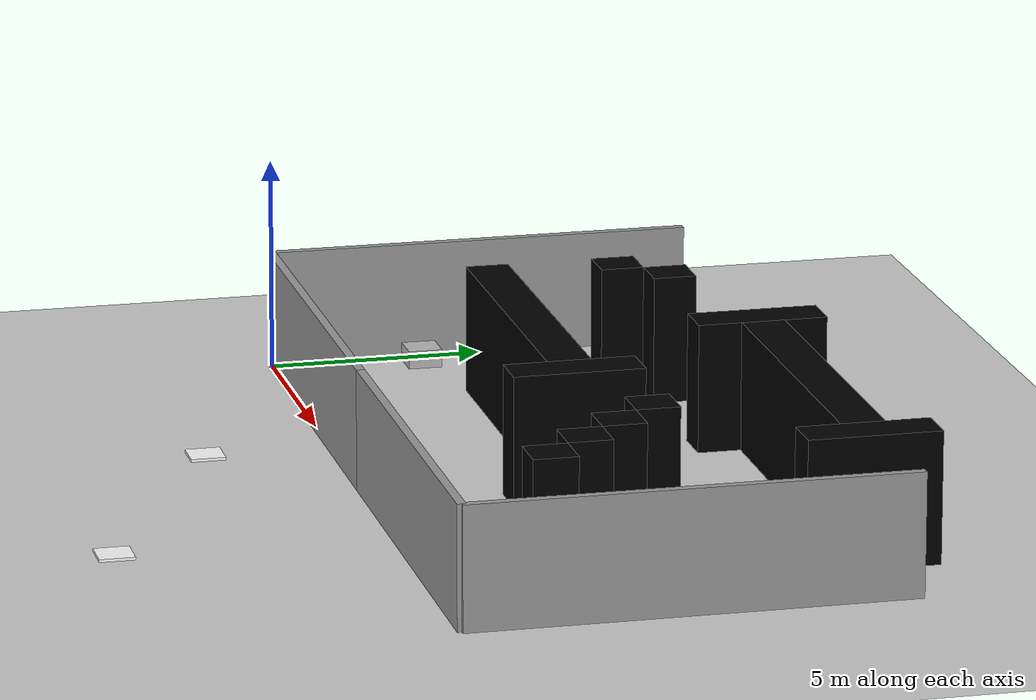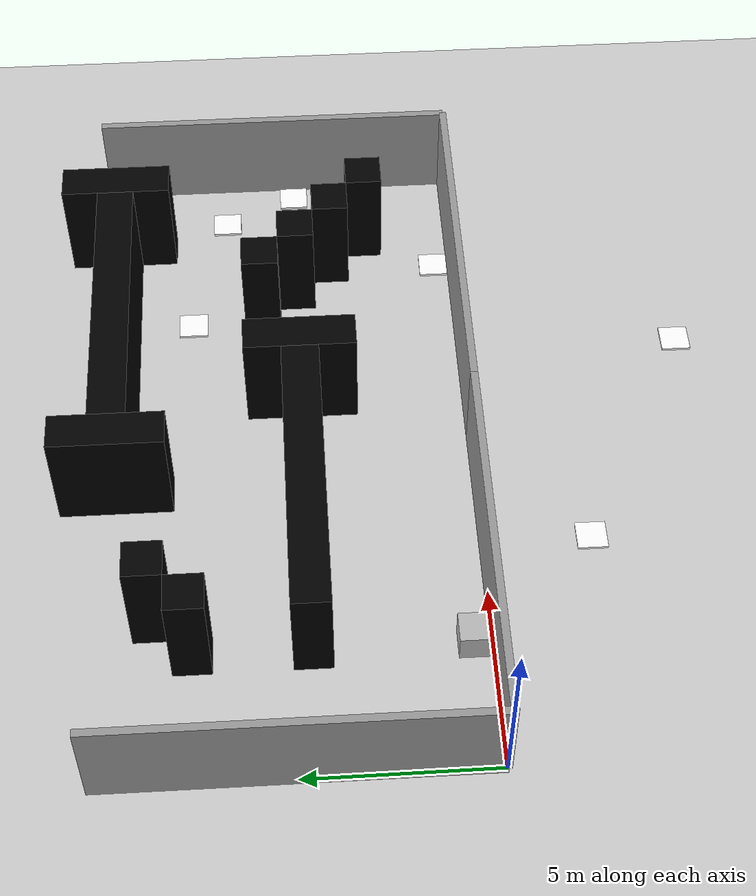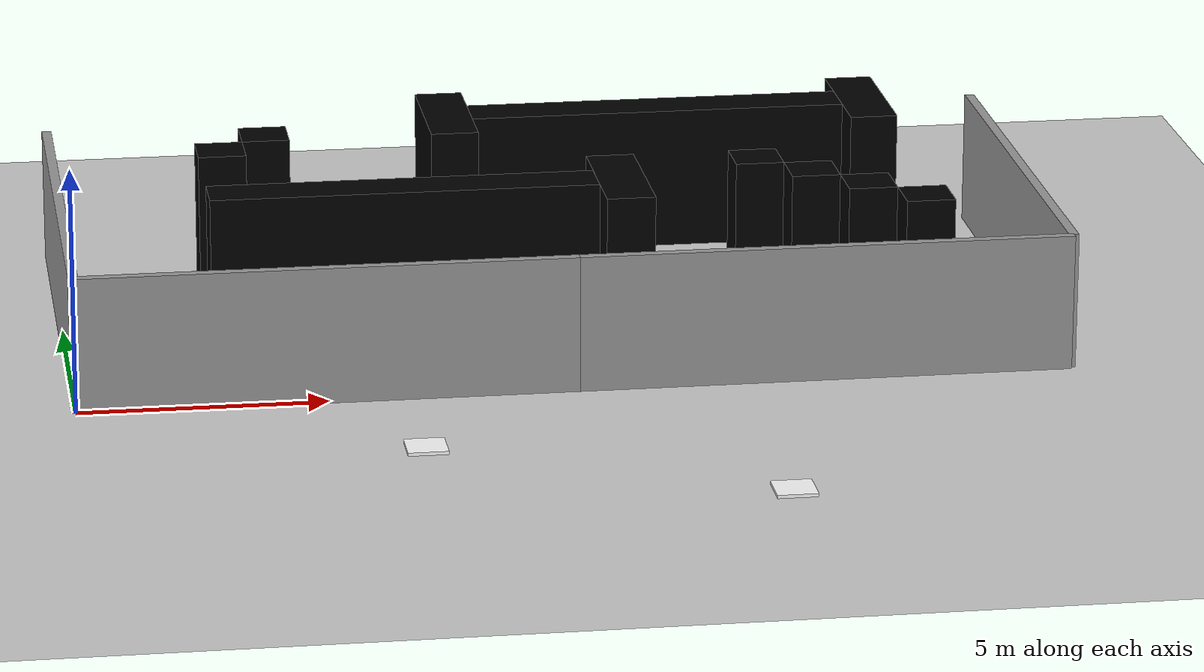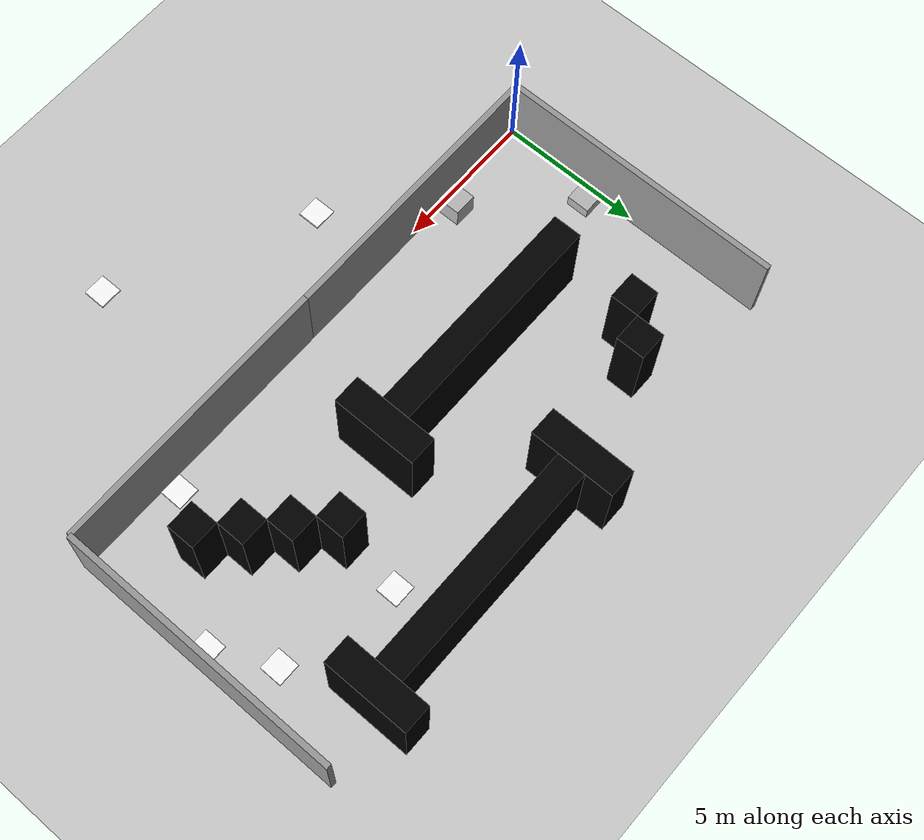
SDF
<sdf version="1.7">
 <world name="default">
  <model name="ground_plane">
   <static>1</static>
   <link name="link">
    <collision name="collision">
     <geometry><plane><normal>0 0 1</normal><size>100 100</size></plane></geometry>
     <surface><friction><ode><mu>100</mu><mu2>50</mu2></ode></friction></surface>
    </collision>
    <visual name="visual">
     <cast_shadows>0</cast_shadows>
     <geometry><plane><normal>0 0 1</normal><size>100 100</size></plane></geometry>
     <material>
      <script><uri>file://media/materials/scripts/gazebo.material</uri><name>Gazebo/Grey</name></script>
     </material>
    </visual>
   </link>
  </model>
  <model name="grey_wall_10">
   <link name="link">
    <pose>0 0 1.4 0 -0 0</pose>
    <inertial>
     <mass>1</mass>
     <inertia><ixx>1</ixx><ixy>0</ixy><ixz>0</ixz><iyy>1</iyy><iyz>0</iyz><izz>1</izz></inertia>
    </inertial>
    <visual name="visual">
     <cast_shadows>0</cast_shadows>
     <geometry><box><size>10 0.2 2.8</size></box></geometry>
     <material>
      <script>
       <uri>model://grey_wall/materials/scripts</uri>
       <uri>model://grey_wall/materials/textures</uri>
       <name>vrc/grey_wall</name>
      </script>
      <shader type="vertex"><normal_map>__default__</normal_map></shader>
      <ambient>1 1 1 1</ambient>
      <diffuse>1 1 1 1</diffuse>
      <specular>0 0 0 1</specular>
      <emissive>0 0 0 1</emissive>
     </material>
    </visual>
    <collision name="collision">
     <geometry><box><size>10 0.2 2.8</size></box></geometry>
     <surface>
      <friction>
       <ode><mu>1</mu><mu2>1</mu2><fdir1>0 0 0</fdir1><slip1>0</slip1><slip2>0</slip2></ode>
       <torsional>
        <coefficient>1</coefficient>
        <patch_radius>0</patch_radius>
        <surface_radius>0</surface_radius>
        <use_patch_radius>1</use_patch_radius>
        <ode><slip>0</slip></ode>
       </torsional>
      </friction>
      <bounce><restitution_coefficient>0</restitution_coefficient><threshold>1e+06</threshold></bounce>
      <contact>
       <collide_without_contact>0</collide_without_contact>
       <collide_without_contact_bitmask>1</collide_without_contact_bitmask>
       <collide_bitmask>1</collide_bitmask>
       <ode>
        <soft_cfm>0</soft_cfm>
        <soft_erp>0.2</soft_erp>
        <kp>1e+13</kp>
        <kd>1</kd>
        <max_vel>0.01</max_vel>
        <min_depth>0</min_depth>
       </ode>
       <bullet>
        <split_impulse>1</split_impulse>
        <split_impulse_penetration_threshold>-0.01</split_impulse_penetration_threshold>
        <soft_cfm>0</soft_cfm>
        <soft_erp>0.2</soft_erp>
        <kp>1e+13</kp>
        <kd>1</kd>
       </bullet>
      </contact>
     </surface>
    </collision>
   </link>
   <static>1</static>
   <pose>5 0 0 0 -0 0</pose>
  </model>
  <model name="grey_wall_10_1">
   <link name="link">
    <pose>0 0 1.4 0 -0 0</pose>
    <inertial>
     <mass>1</mass>
     <inertia><ixx>1</ixx><ixy>0</ixy><ixz>0</ixz><iyy>1</iyy><iyz>0</iyz><izz>1</izz></inertia>
    </inertial>
    <visual name="visual">
     <cast_shadows>0</cast_shadows>
     <geometry><box><size>10 0.2 2.8</size></box></geometry>
     <material>
      <script>
       <uri>model://grey_wall/materials/scripts</uri>
       <uri>model://grey_wall/materials/textures</uri>
       <name>vrc/grey_wall</name>
      </script>
      <shader type="vertex"><normal_map>__default__</normal_map></shader>
      <ambient>1 1 1 1</ambient>
      <diffuse>1 1 1 1</diffuse>
      <specular>0 0 0 1</specular>
      <emissive>0 0 0 1</emissive>
     </material>
    </visual>
    <collision name="collision">
     <geometry><box><size>10 0.2 2.8</size></box></geometry>
     <surface>
      <friction>
       <ode><mu>1</mu><mu2>1</mu2><fdir1>0 0 0</fdir1><slip1>0</slip1><slip2>0</slip2></ode>
       <torsional>
        <coefficient>1</coefficient>
        <patch_radius>0</patch_radius>
        <surface_radius>0</surface_radius>
        <use_patch_radius>1</use_patch_radius>
        <ode><slip>0</slip></ode>
       </torsional>
      </friction>
      <bounce><restitution_coefficient>0</restitution_coefficient><threshold>1e+06</threshold></bounce>
      <contact>
       <collide_without_contact>0</collide_without_contact>
       <collide_without_contact_bitmask>1</collide_without_contact_bitmask>
       <collide_bitmask>1</collide_bitmask>
       <ode>
        <soft_cfm>0</soft_cfm>
        <soft_erp>0.2</soft_erp>
        <kp>1e+13</kp>
        <kd>1</kd>
        <max_vel>0.01</max_vel>
        <min_depth>0</min_depth>
       </ode>
       <bullet>
        <split_impulse>1</split_impulse>
        <split_impulse_penetration_threshold>-0.01</split_impulse_penetration_threshold>
        <soft_cfm>0</soft_cfm>
        <soft_erp>0.2</soft_erp>
        <kp>1e+13</kp>
        <kd>1</kd>
       </bullet>
      </contact>
     </surface>
    </collision>
   </link>
   <static>1</static>
   <pose>15 0 0 0 -0 0</pose>
  </model>
  <model name="grey_wall_10_2">
   <link name="link">
    <pose>0 0 1.4 0 -0 0</pose>
    <inertial>
     <mass>1</mass>
     <inertia><ixx>1</ixx><ixy>0</ixy><ixz>0</ixz><iyy>1</iyy><iyz>0</iyz><izz>1</izz></inertia>
    </inertial>
    <visual name="visual">
     <cast_shadows>0</cast_shadows>
     <geometry><box><size>10 0.2 2.8</size></box></geometry>
     <material>
      <script>
       <uri>model://grey_wall/materials/scripts</uri>
       <uri>model://grey_wall/materials/textures</uri>
       <name>vrc/grey_wall</name>
      </script>
      <shader type="vertex"><normal_map>__default__</normal_map></shader>
      <ambient>1 1 1 1</ambient>
      <diffuse>1 1 1 1</diffuse>
      <specular>0 0 0 1</specular>
      <emissive>0 0 0 1</emissive>
     </material>
    </visual>
    <collision name="collision">
     <geometry><box><size>10 0.2 2.8</size></box></geometry>
     <surface>
      <friction>
       <ode><mu>1</mu><mu2>1</mu2><fdir1>0 0 0</fdir1><slip1>0</slip1><slip2>0</slip2></ode>
       <torsional>
        <coefficient>1</coefficient>
        <patch_radius>0</patch_radius>
        <surface_radius>0</surface_radius>
        <use_patch_radius>1</use_patch_radius>
        <ode><slip>0</slip></ode>
       </torsional>
      </friction>
      <bounce><restitution_coefficient>0</restitution_coefficient><threshold>1e+06</threshold></bounce>
      <contact>
       <collide_without_contact>0</collide_without_contact>
       <collide_without_contact_bitmask>1</collide_without_contact_bitmask>
       <collide_bitmask>1</collide_bitmask>
       <ode>
        <soft_cfm>0</soft_cfm>
        <soft_erp>0.2</soft_erp>
        <kp>1e+13</kp>
        <kd>1</kd>
        <max_vel>0.01</max_vel>
        <min_depth>0</min_depth>
       </ode>
       <bullet>
        <split_impulse>1</split_impulse>
        <split_impulse_penetration_threshold>-0.01</split_impulse_penetration_threshold>
        <soft_cfm>0</soft_cfm>
        <soft_erp>0.2</soft_erp>
        <kp>1e+13</kp>
        <kd>1</kd>
       </bullet>
      </contact>
     </surface>
    </collision>
   </link>
   <static>1</static>
   <pose>0 5 0 0 -0 1.57</pose>
  </model>
  <model name="grey_wall_10_3">
   <link name="link">
    <pose>0 0 1.4 0 -0 0</pose>
    <inertial>
     <mass>1</mass>
     <inertia><ixx>1</ixx><ixy>0</ixy><ixz>0</ixz><iyy>1</iyy><iyz>0</iyz><izz>1</izz></inertia>
    </inertial>
    <visual name="visual">
     <cast_shadows>0</cast_shadows>
     <geometry><box><size>10 0.2 2.8</size></box></geometry>
     <material>
      <script>
       <uri>model://grey_wall/materials/scripts</uri>
       <uri>model://grey_wall/materials/textures</uri>
       <name>vrc/grey_wall</name>
      </script>
      <shader type="vertex"><normal_map>__default__</normal_map></shader>
      <ambient>1 1 1 1</ambient>
      <diffuse>1 1 1 1</diffuse>
      <specular>0 0 0 1</specular>
      <emissive>0 0 0 1</emissive>
     </material>
    </visual>
    <collision name="collision">
     <geometry><box><size>10 0.2 2.8</size></box></geometry>
     <surface>
      <friction>
       <ode><mu>1</mu><mu2>1</mu2><fdir1>0 0 0</fdir1><slip1>0</slip1><slip2>0</slip2></ode>
       <torsional>
        <coefficient>1</coefficient>
        <patch_radius>0</patch_radius>
        <surface_radius>0</surface_radius>
        <use_patch_radius>1</use_patch_radius>
        <ode><slip>0</slip></ode>
       </torsional>
      </friction>
      <bounce><restitution_coefficient>0</restitution_coefficient><threshold>1e+06</threshold></bounce>
      <contact>
       <collide_without_contact>0</collide_without_contact>
       <collide_without_contact_bitmask>1</collide_without_contact_bitmask>
       <collide_bitmask>1</collide_bitmask>
       <ode>
        <soft_cfm>0</soft_cfm>
        <soft_erp>0.2</soft_erp>
        <kp>1e+13</kp>
        <kd>1</kd>
        <max_vel>0.01</max_vel>
        <min_depth>0</min_depth>
       </ode>
       <bullet>
        <split_impulse>1</split_impulse>
        <split_impulse_penetration_threshold>-0.01</split_impulse_penetration_threshold>
        <soft_cfm>0</soft_cfm>
        <soft_erp>0.2</soft_erp>
        <kp>1e+13</kp>
        <kd>1</kd>
       </bullet>
      </contact>
     </surface>
    </collision>
   </link>
   <static>1</static>
   <pose>20 5 0 0 -0 1.57</pose>
  </model>
  <model name="brick_box_8x1_b">
   <link name="chassis">
    <pose>0 0 1.5 0 -0 0</pose>
    <inertial>
     <mass>1</mass>
     <inertia><ixx>1</ixx><ixy>0</ixy><ixz>0</ixz><iyy>1</iyy><iyz>0</iyz><izz>1</izz></inertia>
    </inertial>
    <visual name="visual">
     <geometry><mesh><uri>model://brick_box_3x1x3/meshes/simple_box.dae</uri><scale>8 1 3</scale></mesh></geometry>
     <material>
      <script>
       <uri>model://brick_box_3x1x3/materials/scripts</uri>
       <uri>model://brick_box_3x1x3/materials/textures</uri>
       <name>BrickBox/Diffuse</name>
      </script>
      <shader type="vertex"><normal_map>__default__</normal_map></shader>
      <ambient>0 0 0 1</ambient>
      <diffuse>0 0 0 1</diffuse>
      <specular>0 0 0 1</specular>
      <emissive>0 0 0 1</emissive>
      <lighting>1</lighting>
     </material>
    </visual>
    <collision name="collision">
     <geometry><box><size>8 1 3</size></box></geometry>
     <surface>
      <friction>
       <ode><mu>1</mu><mu2>1</mu2><fdir1>0 0 0</fdir1><slip1>0</slip1><slip2>0</slip2></ode>
       <torsional>
        <coefficient>1</coefficient>
        <patch_radius>0</patch_radius>
        <surface_radius>0</surface_radius>
        <use_patch_radius>1</use_patch_radius>
        <ode><slip>0</slip></ode>
       </torsional>
      </friction>
      <bounce><restitution_coefficient>0</restitution_coefficient><threshold>1e+06</threshold></bounce>
      <contact>
       <collide_without_contact>0</collide_without_contact>
       <collide_without_contact_bitmask>1</collide_without_contact_bitmask>
       <collide_bitmask>1</collide_bitmask>
       <ode>
        <soft_cfm>0</soft_cfm>
        <soft_erp>0.2</soft_erp>
        <kp>1e+13</kp>
        <kd>1</kd>
        <max_vel>0.01</max_vel>
        <min_depth>0</min_depth>
       </ode>
       <bullet>
        <split_impulse>1</split_impulse>
        <split_impulse_penetration_threshold>-0.01</split_impulse_penetration_threshold>
        <soft_cfm>0</soft_cfm>
        <soft_erp>0.2</soft_erp>
        <kp>1e+13</kp>
        <kd>1</kd>
       </bullet>
      </contact>
     </surface>
    </collision>
   </link>
   <static>1</static>
   <pose>7 4.5 0 0 -0 0</pose>
  </model>
  <model name="brick_box_8x1_b_0">
   <link name="chassis">
    <pose>0 0 1.5 0 -0 0</pose>
    <inertial>
     <mass>1</mass>
     <inertia><ixx>1</ixx><ixy>0</ixy><ixz>0</ixz><iyy>1</iyy><iyz>0</iyz><izz>1</izz></inertia>
    </inertial>
    <visual name="visual">
     <geometry><mesh><uri>model://brick_box_3x1x3/meshes/simple_box.dae</uri><scale>8 1 3</scale></mesh></geometry>
     <material>
      <script>
       <uri>model://brick_box_3x1x3/materials/scripts</uri>
       <uri>model://brick_box_3x1x3/materials/textures</uri>
       <name>BrickBox/Diffuse</name>
      </script>
      <shader type="vertex"><normal_map>__default__</normal_map></shader>
      <ambient>0 0 0 1</ambient>
      <diffuse>0 0 0 1</diffuse>
      <specular>0 0 0 1</specular>
      <emissive>0 0 0 1</emissive>
      <lighting>1</lighting>
     </material>
    </visual>
    <collision name="collision">
     <geometry><box><size>8 1 3</size></box></geometry>
     <surface>
      <friction>
       <ode><mu>1</mu><mu2>1</mu2><fdir1>0 0 0</fdir1><slip1>0</slip1><slip2>0</slip2></ode>
       <torsional>
        <coefficient>1</coefficient>
        <patch_radius>0</patch_radius>
        <surface_radius>0</surface_radius>
        <use_patch_radius>1</use_patch_radius>
        <ode><slip>0</slip></ode>
       </torsional>
      </friction>
      <bounce><restitution_coefficient>0</restitution_coefficient><threshold>1e+06</threshold></bounce>
      <contact>
       <collide_without_contact>0</collide_without_contact>
       <collide_without_contact_bitmask>1</collide_without_contact_bitmask>
       <collide_bitmask>1</collide_bitmask>
       <ode>
        <soft_cfm>0</soft_cfm>
        <soft_erp>0.2</soft_erp>
        <kp>1e+13</kp>
        <kd>1</kd>
        <max_vel>0.01</max_vel>
        <min_depth>0</min_depth>
       </ode>
       <bullet>
        <split_impulse>1</split_impulse>
        <split_impulse_penetration_threshold>-0.01</split_impulse_penetration_threshold>
        <soft_cfm>0</soft_cfm>
        <soft_erp>0.2</soft_erp>
        <kp>1e+13</kp>
        <kd>1</kd>
       </bullet>
      </contact>
     </surface>
    </collision>
   </link>
   <static>1</static>
   <pose>13 9.5 0 0 -0 0</pose>
  </model>
  <model name="brick_box_3x1x3_black_1">
   <link name="chassis">
    <pose>0 0 1.5 0 -0 0</pose>
    <inertial>
     <mass>1</mass>
     <inertia><ixx>1</ixx><ixy>0</ixy><ixz>0</ixz><iyy>1</iyy><iyz>0</iyz><izz>1</izz></inertia>
    </inertial>
    <visual name="visual">
     <geometry><mesh><uri>model://brick_box_3x1x3/meshes/simple_box.dae</uri><scale>3 1 3</scale></mesh></geometry>
     <material>
      <script>
       <uri>model://brick_box_3x1x3/materials/scripts</uri>
       <uri>model://brick_box_3x1x3/materials/textures</uri>
       <name>BrickBox/Diffuse</name>
      </script>
      <shader type="vertex"><normal_map>__default__</normal_map></shader>
      <ambient>0 0 0 1</ambient>
      <diffuse>0 0 0 1</diffuse>
      <specular>0 0 0 1</specular>
      <emissive>0 0 0 1</emissive>
      <lighting>1</lighting>
     </material>
    </visual>
    <collision name="collision">
     <geometry><box><size>3 1 3</size></box></geometry>
     <surface>
      <friction>
       <ode><mu>1</mu><mu2>1</mu2><fdir1>0 0 0</fdir1><slip1>0</slip1><slip2>0</slip2></ode>
       <torsional>
        <coefficient>1</coefficient>
        <patch_radius>0</patch_radius>
        <surface_radius>0</surface_radius>
        <use_patch_radius>1</use_patch_radius>
        <ode><slip>0</slip></ode>
       </torsional>
      </friction>
      <bounce><restitution_coefficient>0</restitution_coefficient><threshold>1e+06</threshold></bounce>
      <contact>
       <collide_without_contact>0</collide_without_contact>
       <collide_without_contact_bitmask>1</collide_without_contact_bitmask>
       <collide_bitmask>1</collide_bitmask>
       <ode>
        <soft_cfm>0</soft_cfm>
        <soft_erp>0.2</soft_erp>
        <kp>1e+13</kp>
        <kd>1</kd>
        <max_vel>0.01</max_vel>
        <min_depth>0</min_depth>
       </ode>
       <bullet>
        <split_impulse>1</split_impulse>
        <split_impulse_penetration_threshold>-0.01</split_impulse_penetration_threshold>
        <soft_cfm>0</soft_cfm>
        <soft_erp>0.2</soft_erp>
        <kp>1e+13</kp>
        <kd>1</kd>
       </bullet>
      </contact>
     </surface>
    </collision>
   </link>
   <static>1</static>
   <pose>17.5 9.5 0 0 -0 1.57</pose>
  </model>
  <model name="brick_box_3x1x3_black_2">
   <link name="chassis">
    <pose>0 0 1.5 0 -0 0</pose>
    <inertial>
     <mass>1</mass>
     <inertia><ixx>1</ixx><ixy>0</ixy><ixz>0</ixz><iyy>1</iyy><iyz>0</iyz><izz>1</izz></inertia>
    </inertial>
    <visual name="visual">
     <geometry><mesh><uri>model://brick_box_3x1x3/meshes/simple_box.dae</uri><scale>3 1 3</scale></mesh></geometry>
     <material>
      <script>
       <uri>model://brick_box_3x1x3/materials/scripts</uri>
       <uri>model://brick_box_3x1x3/materials/textures</uri>
       <name>BrickBox/Diffuse</name>
      </script>
      <shader type="vertex"><normal_map>__default__</normal_map></shader>
      <ambient>0 0 0 1</ambient>
      <diffuse>0 0 0 1</diffuse>
      <specular>0 0 0 1</specular>
      <emissive>0 0 0 1</emissive>
      <lighting>1</lighting>
     </material>
    </visual>
    <collision name="collision">
     <geometry><box><size>3 1 3</size></box></geometry>
     <surface>
      <friction>
       <ode><mu>1</mu><mu2>1</mu2><fdir1>0 0 0</fdir1><slip1>0</slip1><slip2>0</slip2></ode>
       <torsional>
        <coefficient>1</coefficient>
        <patch_radius>0</patch_radius>
        <surface_radius>0</surface_radius>
        <use_patch_radius>1</use_patch_radius>
        <ode><slip>0</slip></ode>
       </torsional>
      </friction>
      <bounce><restitution_coefficient>0</restitution_coefficient><threshold>1e+06</threshold></bounce>
      <contact>
       <collide_without_contact>0</collide_without_contact>
       <collide_without_contact_bitmask>1</collide_without_contact_bitmask>
       <collide_bitmask>1</collide_bitmask>
       <ode>
        <soft_cfm>0</soft_cfm>
        <soft_erp>0.2</soft_erp>
        <kp>1e+13</kp>
        <kd>1</kd>
        <max_vel>0.01</max_vel>
        <min_depth>0</min_depth>
       </ode>
       <bullet>
        <split_impulse>1</split_impulse>
        <split_impulse_penetration_threshold>-0.01</split_impulse_penetration_threshold>
        <soft_cfm>0</soft_cfm>
        <soft_erp>0.2</soft_erp>
        <kp>1e+13</kp>
        <kd>1</kd>
       </bullet>
      </contact>
     </surface>
    </collision>
   </link>
   <static>1</static>
   <pose>8.5 9.5 0 0 -0 1.57</pose>
  </model>
  <model name="brick_box_3x1x3_black_3">
   <link name="chassis">
    <pose>0 0 1.5 0 -0 0</pose>
    <inertial>
     <mass>1</mass>
     <inertia><ixx>1</ixx><ixy>0</ixy><ixz>0</ixz><iyy>1</iyy><iyz>0</iyz><izz>1</izz></inertia>
    </inertial>
    <visual name="visual">
     <geometry><mesh><uri>model://brick_box_3x1x3/meshes/simple_box.dae</uri><scale>3 1 3</scale></mesh></geometry>
     <material>
      <script>
       <uri>model://brick_box_3x1x3/materials/scripts</uri>
       <uri>model://brick_box_3x1x3/materials/textures</uri>
       <name>BrickBox/Diffuse</name>
      </script>
      <shader type="vertex"><normal_map>__default__</normal_map></shader>
      <ambient>0 0 0 1</ambient>
      <diffuse>0 0 0 1</diffuse>
      <specular>0 0 0 1</specular>
      <emissive>0 0 0 1</emissive>
      <lighting>1</lighting>
     </material>
    </visual>
    <collision name="collision">
     <geometry><box><size>3 1 3</size></box></geometry>
     <surface>
      <friction>
       <ode><mu>1</mu><mu2>1</mu2><fdir1>0 0 0</fdir1><slip1>0</slip1><slip2>0</slip2></ode>
       <torsional>
        <coefficient>1</coefficient>
        <patch_radius>0</patch_radius>
        <surface_radius>0</surface_radius>
        <use_patch_radius>1</use_patch_radius>
        <ode><slip>0</slip></ode>
       </torsional>
      </friction>
      <bounce><restitution_coefficient>0</restitution_coefficient><threshold>1e+06</threshold></bounce>
      <contact>
       <collide_without_contact>0</collide_without_contact>
       <collide_without_contact_bitmask>1</collide_without_contact_bitmask>
       <collide_bitmask>1</collide_bitmask>
       <ode>
        <soft_cfm>0</soft_cfm>
        <soft_erp>0.2</soft_erp>
        <kp>1e+13</kp>
        <kd>1</kd>
        <max_vel>0.01</max_vel>
        <min_depth>0</min_depth>
       </ode>
       <bullet>
        <split_impulse>1</split_impulse>
        <split_impulse_penetration_threshold>-0.01</split_impulse_penetration_threshold>
        <soft_cfm>0</soft_cfm>
        <soft_erp>0.2</soft_erp>
        <kp>1e+13</kp>
        <kd>1</kd>
       </bullet>
      </contact>
     </surface>
    </collision>
   </link>
   <static>1</static>
   <pose>11.5 4.5 0 0 -0 1.57</pose>
  </model>
  <model name="brick_box_1_B_0">
   <link name="chassis">
    <pose>0 0 1.5 0 -0 0</pose>
    <inertial>
     <mass>1</mass>
     <inertia><ixx>1</ixx><ixy>0</ixy><ixz>0</ixz><iyy>1</iyy><iyz>0</iyz><izz>1</izz></inertia>
    </inertial>
    <visual name="visual">
     <geometry><mesh><uri>model://brick_box_3x1x3/meshes/simple_box.dae</uri><scale>1 1 3</scale></mesh></geometry>
     <material>
      <script>
       <uri>model://brick_box_3x1x3/materials/scripts</uri>
       <uri>model://brick_box_3x1x3/materials/textures</uri>
       <name>BrickBox/Diffuse</name>
      </script>
      <shader type="vertex"><normal_map>__default__</normal_map></shader>
      <ambient>0 0 0 1</ambient>
      <diffuse>0 0 0 1</diffuse>
      <specular>0 0 0 1</specular>
      <emissive>0 0 0 1</emissive>
      <lighting>1</lighting>
     </material>
    </visual>
    <collision name="collision">
     <geometry><box><size>1 1 3</size></box></geometry>
     <surface>
      <friction>
       <ode><mu>1</mu><mu2>1</mu2><fdir1>0 0 0</fdir1><slip1>0</slip1><slip2>0</slip2></ode>
       <torsional>
        <coefficient>1</coefficient>
        <patch_radius>0</patch_radius>
        <surface_radius>0</surface_radius>
        <use_patch_radius>1</use_patch_radius>
        <ode><slip>0</slip></ode>
       </torsional>
      </friction>
      <bounce><restitution_coefficient>0</restitution_coefficient><threshold>1e+06</threshold></bounce>
      <contact>
       <collide_without_contact>0</collide_without_contact>
       <collide_without_contact_bitmask>1</collide_without_contact_bitmask>
       <collide_bitmask>1</collide_bitmask>
       <ode>
        <soft_cfm>0</soft_cfm>
        <soft_erp>0.2</soft_erp>
        <kp>1e+13</kp>
        <kd>1</kd>
        <max_vel>0.01</max_vel>
        <min_depth>0</min_depth>
       </ode>
       <bullet>
        <split_impulse>1</split_impulse>
        <split_impulse_penetration_threshold>-0.01</split_impulse_penetration_threshold>
        <soft_cfm>0</soft_cfm>
        <soft_erp>0.2</soft_erp>
        <kp>1e+13</kp>
        <kd>1</kd>
       </bullet>
      </contact>
     </surface>
    </collision>
   </link>
   <static>1</static>
   <pose>17.5 2.5 0 0 -0 0</pose>
  </model>
  <model name="brick_box_1_B_2">
   <link name="chassis">
    <pose>0 0 1.5 0 -0 0</pose>
    <inertial>
     <mass>1</mass>
     <inertia><ixx>1</ixx><ixy>0</ixy><ixz>0</ixz><iyy>1</iyy><iyz>0</iyz><izz>1</izz></inertia>
    </inertial>
    <visual name="visual">
     <geometry><mesh><uri>model://brick_box_3x1x3/meshes/simple_box.dae</uri><scale>1 1 3</scale></mesh></geometry>
     <material>
      <script>
       <uri>model://brick_box_3x1x3/materials/scripts</uri>
       <uri>model://brick_box_3x1x3/materials/textures</uri>
       <name>BrickBox/Diffuse</name>
      </script>
      <shader type="vertex"><normal_map>__default__</normal_map></shader>
      <ambient>0 0 0 1</ambient>
      <diffuse>0 0 0 1</diffuse>
      <specular>0 0 0 1</specular>
      <emissive>0 0 0 1</emissive>
      <lighting>1</lighting>
     </material>
    </visual>
    <collision name="collision">
     <geometry><box><size>1 1 3</size></box></geometry>
     <surface>
      <friction>
       <ode><mu>1</mu><mu2>1</mu2><fdir1>0 0 0</fdir1><slip1>0</slip1><slip2>0</slip2></ode>
       <torsional>
        <coefficient>1</coefficient>
        <patch_radius>0</patch_radius>
        <surface_radius>0</surface_radius>
        <use_patch_radius>1</use_patch_radius>
        <ode><slip>0</slip></ode>
       </torsional>
      </friction>
      <bounce><restitution_coefficient>0</restitution_coefficient><threshold>1e+06</threshold></bounce>
      <contact>
       <collide_without_contact>0</collide_without_contact>
       <collide_without_contact_bitmask>1</collide_without_contact_bitmask>
       <collide_bitmask>1</collide_bitmask>
       <ode>
        <soft_cfm>0</soft_cfm>
        <soft_erp>0.2</soft_erp>
        <kp>1e+13</kp>
        <kd>1</kd>
        <max_vel>0.01</max_vel>
        <min_depth>0</min_depth>
       </ode>
       <bullet>
        <split_impulse>1</split_impulse>
        <split_impulse_penetration_threshold>-0.01</split_impulse_penetration_threshold>
        <soft_cfm>0</soft_cfm>
        <soft_erp>0.2</soft_erp>
        <kp>1e+13</kp>
        <kd>1</kd>
       </bullet>
      </contact>
     </surface>
    </collision>
   </link>
   <static>1</static>
   <pose>16.5 3.5 0 0 -0 0</pose>
  </model>
  <model name="brick_box_1_B_4">
   <link name="chassis">
    <pose>0 0 1.5 0 -0 0</pose>
    <inertial>
     <mass>1</mass>
     <inertia><ixx>1</ixx><ixy>0</ixy><ixz>0</ixz><iyy>1</iyy><iyz>0</iyz><izz>1</izz></inertia>
    </inertial>
    <visual name="visual">
     <geometry><mesh><uri>model://brick_box_3x1x3/meshes/simple_box.dae</uri><scale>1 1 3</scale></mesh></geometry>
     <material>
      <script>
       <uri>model://brick_box_3x1x3/materials/scripts</uri>
       <uri>model://brick_box_3x1x3/materials/textures</uri>
       <name>BrickBox/Diffuse</name>
      </script>
      <shader type="vertex"><normal_map>__default__</normal_map></shader>
      <ambient>0 0 0 1</ambient>
      <diffuse>0 0 0 1</diffuse>
      <specular>0 0 0 1</specular>
      <emissive>0 0 0 1</emissive>
      <lighting>1</lighting>
     </material>
    </visual>
    <collision name="collision">
     <geometry><box><size>1 1 3</size></box></geometry>
     <surface>
      <friction>
       <ode><mu>1</mu><mu2>1</mu2><fdir1>0 0 0</fdir1><slip1>0</slip1><slip2>0</slip2></ode>
       <torsional>
        <coefficient>1</coefficient>
        <patch_radius>0</patch_radius>
        <surface_radius>0</surface_radius>
        <use_patch_radius>1</use_patch_radius>
        <ode><slip>0</slip></ode>
       </torsional>
      </friction>
      <bounce><restitution_coefficient>0</restitution_coefficient><threshold>1e+06</threshold></bounce>
      <contact>
       <collide_without_contact>0</collide_without_contact>
       <collide_without_contact_bitmask>1</collide_without_contact_bitmask>
       <collide_bitmask>1</collide_bitmask>
       <ode>
        <soft_cfm>0</soft_cfm>
        <soft_erp>0.2</soft_erp>
        <kp>1e+13</kp>
        <kd>1</kd>
        <max_vel>0.01</max_vel>
        <min_depth>0</min_depth>
       </ode>
       <bullet>
        <split_impulse>1</split_impulse>
        <split_impulse_penetration_threshold>-0.01</split_impulse_penetration_threshold>
        <soft_cfm>0</soft_cfm>
        <soft_erp>0.2</soft_erp>
        <kp>1e+13</kp>
        <kd>1</kd>
       </bullet>
      </contact>
     </surface>
    </collision>
   </link>
   <static>1</static>
   <pose>15.5 4.5 0 0 -0 0</pose>
  </model>
  <model name="brick_box_1_B_5">
   <link name="chassis">
    <pose>0 0 1.5 0 -0 0</pose>
    <inertial>
     <mass>1</mass>
     <inertia><ixx>1</ixx><ixy>0</ixy><ixz>0</ixz><iyy>1</iyy><iyz>0</iyz><izz>1</izz></inertia>
    </inertial>
    <visual name="visual">
     <geometry><mesh><uri>model://brick_box_3x1x3/meshes/simple_box.dae</uri><scale>1 1 3</scale></mesh></geometry>
     <material>
      <script>
       <uri>model://brick_box_3x1x3/materials/scripts</uri>
       <uri>model://brick_box_3x1x3/materials/textures</uri>
       <name>BrickBox/Diffuse</name>
      </script>
      <shader type="vertex"><normal_map>__default__</normal_map></shader>
      <ambient>0 0 0 1</ambient>
      <diffuse>0 0 0 1</diffuse>
      <specular>0 0 0 1</specular>
      <emissive>0 0 0 1</emissive>
      <lighting>1</lighting>
     </material>
    </visual>
    <collision name="collision">
     <geometry><box><size>1 1 3</size></box></geometry>
     <surface>
      <friction>
       <ode><mu>1</mu><mu2>1</mu2><fdir1>0 0 0</fdir1><slip1>0</slip1><slip2>0</slip2></ode>
       <torsional>
        <coefficient>1</coefficient>
        <patch_radius>0</patch_radius>
        <surface_radius>0</surface_radius>
        <use_patch_radius>1</use_patch_radius>
        <ode><slip>0</slip></ode>
       </torsional>
      </friction>
      <bounce><restitution_coefficient>0</restitution_coefficient><threshold>1e+06</threshold></bounce>
      <contact>
       <collide_without_contact>0</collide_without_contact>
       <collide_without_contact_bitmask>1</collide_without_contact_bitmask>
       <collide_bitmask>1</collide_bitmask>
       <ode>
        <soft_cfm>0</soft_cfm>
        <soft_erp>0.2</soft_erp>
        <kp>1e+13</kp>
        <kd>1</kd>
        <max_vel>0.01</max_vel>
        <min_depth>0</min_depth>
       </ode>
       <bullet>
        <split_impulse>1</split_impulse>
        <split_impulse_penetration_threshold>-0.01</split_impulse_penetration_threshold>
        <soft_cfm>0</soft_cfm>
        <soft_erp>0.2</soft_erp>
        <kp>1e+13</kp>
        <kd>1</kd>
       </bullet>
      </contact>
     </surface>
    </collision>
   </link>
   <static>1</static>
   <pose>14.5 5.5 0 0 -0 0</pose>
  </model>
  <model name="brick_box_1_B_9">
   <link name="chassis">
    <pose>0 0 1.5 0 -0 0</pose>
    <inertial>
     <mass>1</mass>
     <inertia><ixx>1</ixx><ixy>0</ixy><ixz>0</ixz><iyy>1</iyy><iyz>0</iyz><izz>1</izz></inertia>
    </inertial>
    <visual name="visual">
     <geometry><mesh><uri>model://brick_box_3x1x3/meshes/simple_box.dae</uri><scale>1 1 3</scale></mesh></geometry>
     <material>
      <script>
       <uri>model://brick_box_3x1x3/materials/scripts</uri>
       <uri>model://brick_box_3x1x3/materials/textures</uri>
       <name>BrickBox/Diffuse</name>
      </script>
      <shader type="vertex"><normal_map>__default__</normal_map></shader>
      <ambient>0 0 0 1</ambient>
      <diffuse>0 0 0 1</diffuse>
      <specular>0 0 0 1</specular>
      <emissive>0 0 0 1</emissive>
      <lighting>1</lighting>
     </material>
    </visual>
    <collision name="collision">
     <geometry><box><size>1 1 3</size></box></geometry>
     <surface>
      <friction>
       <ode><mu>1</mu><mu2>1</mu2><fdir1>0 0 0</fdir1><slip1>0</slip1><slip2>0</slip2></ode>
       <torsional>
        <coefficient>1</coefficient>
        <patch_radius>0</patch_radius>
        <surface_radius>0</surface_radius>
        <use_patch_radius>1</use_patch_radius>
        <ode><slip>0</slip></ode>
       </torsional>
      </friction>
      <bounce><restitution_coefficient>0</restitution_coefficient><threshold>1e+06</threshold></bounce>
      <contact>
       <collide_without_contact>0</collide_without_contact>
       <collide_without_contact_bitmask>1</collide_without_contact_bitmask>
       <collide_bitmask>1</collide_bitmask>
       <ode>
        <soft_cfm>0</soft_cfm>
        <soft_erp>0.2</soft_erp>
        <kp>1e+13</kp>
        <kd>1</kd>
        <max_vel>0.01</max_vel>
        <min_depth>0</min_depth>
       </ode>
       <bullet>
        <split_impulse>1</split_impulse>
        <split_impulse_penetration_threshold>-0.01</split_impulse_penetration_threshold>
        <soft_cfm>0</soft_cfm>
        <soft_erp>0.2</soft_erp>
        <kp>1e+13</kp>
        <kd>1</kd>
       </bullet>
      </contact>
     </surface>
    </collision>
   </link>
   <static>1</static>
   <pose>4.5 8.5 0 0 -0 0</pose>
  </model>
  <model name="brick_box_1_B_11">
   <link name="chassis">
    <pose>0 0 1.5 0 -0 0</pose>
    <inertial>
     <mass>1</mass>
     <inertia><ixx>1</ixx><ixy>0</ixy><ixz>0</ixz><iyy>1</iyy><iyz>0</iyz><izz>1</izz></inertia>
    </inertial>
    <visual name="visual">
     <geometry><mesh><uri>model://brick_box_3x1x3/meshes/simple_box.dae</uri><scale>1 1 3</scale></mesh></geometry>
     <material>
      <script>
       <uri>model://brick_box_3x1x3/materials/scripts</uri>
       <uri>model://brick_box_3x1x3/materials/textures</uri>
       <name>BrickBox/Diffuse</name>
      </script>
      <shader type="vertex"><normal_map>__default__</normal_map></shader>
      <ambient>0 0 0 1</ambient>
      <diffuse>0 0 0 1</diffuse>
      <specular>0 0 0 1</specular>
      <emissive>0 0 0 1</emissive>
      <lighting>1</lighting>
     </material>
    </visual>
    <collision name="collision">
     <geometry><box><size>1 1 3</size></box></geometry>
     <surface>
      <friction>
       <ode><mu>1</mu><mu2>1</mu2><fdir1>0 0 0</fdir1><slip1>0</slip1><slip2>0</slip2></ode>
       <torsional>
        <coefficient>1</coefficient>
        <patch_radius>0</patch_radius>
        <surface_radius>0</surface_radius>
        <use_patch_radius>1</use_patch_radius>
        <ode><slip>0</slip></ode>
       </torsional>
      </friction>
      <bounce><restitution_coefficient>0</restitution_coefficient><threshold>1e+06</threshold></bounce>
      <contact>
       <collide_without_contact>0</collide_without_contact>
       <collide_without_contact_bitmask>1</collide_without_contact_bitmask>
       <collide_bitmask>1</collide_bitmask>
       <ode>
        <soft_cfm>0</soft_cfm>
        <soft_erp>0.2</soft_erp>
        <kp>1e+13</kp>
        <kd>1</kd>
        <max_vel>0.01</max_vel>
        <min_depth>0</min_depth>
       </ode>
       <bullet>
        <split_impulse>1</split_impulse>
        <split_impulse_penetration_threshold>-0.01</split_impulse_penetration_threshold>
        <soft_cfm>0</soft_cfm>
        <soft_erp>0.2</soft_erp>
        <kp>1e+13</kp>
        <kd>1</kd>
       </bullet>
      </contact>
     </surface>
    </collision>
   </link>
   <static>1</static>
   <pose>3.5 7.5 0 0 -0 0</pose>
  </model>
  <model name="number1">
   <pose>3.5 0.5 0.4 0 -0 3.14</pose>
   <static>1</static>
   <link name="link">
    <visual name="visual">
     <geometry><mesh><uri>model://number1/meshes/number.dae</uri></mesh></geometry>
     <material>
      <script>
       <uri>model://number1/materials/scripts</uri>
       <uri>model://number1/materials/textures</uri>
       <name>Number/One</name>
      </script>
     </material>
    </visual>
   </link>
  </model>
  <model name="number1_0">
   <pose>0.5 3.5 0 0 -0 3.14</pose>
   <static>1</static>
   <link name="link">
    <visual name="visual">
     <geometry><mesh><uri>model://number1/meshes/number.dae</uri></mesh></geometry>
     <material>
      <script>
       <uri>model://number1/materials/scripts</uri>
       <uri>model://number1/materials/textures</uri>
       <name>Number/One</name>
      </script>
     </material>
    </visual>
   </link>
  </model>
  <model name="number1_short_clone_2">
   <link name="link">
    <inertial>
     <mass>1</mass>
     <inertia><ixx>1</ixx><ixy>0</ixy><ixz>0</ixz><iyy>1</iyy><iyz>0</iyz><izz>1</izz></inertia>
    </inertial>
    <visual name="visual">
     <geometry><mesh><uri>model://number1/meshes/number.dae</uri><scale>1 1 0.1</scale></mesh></geometry>
     <material>
      <script>
       <uri>model://number1/materials/scripts</uri>
       <uri>model://number1/materials/textures</uri>
       <name>Number/One</name>
      </script>
      <shader type="vertex"><normal_map>__default__</normal_map></shader>
      <ambient>1 1 1 1</ambient>
      <diffuse>1 1 1 1</diffuse>
      <specular>0 0 0 1</specular>
      <emissive>0 0 0 1</emissive>
     </material>
    </visual>
   </link>
   <static>1</static>
   <pose>19.5 4.5 0 0 -0 3.14</pose>
  </model>
  <model name="number1_short_clone_3">
   <link name="link">
    <inertial>
     <mass>1</mass>
     <inertia><ixx>1</ixx><ixy>0</ixy><ixz>0</ixz><iyy>1</iyy><iyz>0</iyz><izz>1</izz></inertia>
    </inertial>
    <visual name="visual">
     <geometry><mesh><uri>model://number1/meshes/number.dae</uri><scale>1 1 0.1</scale></mesh></geometry>
     <material>
      <script>
       <uri>model://number1/materials/scripts</uri>
       <uri>model://number1/materials/textures</uri>
       <name>Number/One</name>
      </script>
      <shader type="vertex"><normal_map>__default__</normal_map></shader>
      <ambient>1 1 1 1</ambient>
      <diffuse>1 1 1 1</diffuse>
      <specular>0 0 0 1</specular>
      <emissive>0 0 0 1</emissive>
     </material>
    </visual>
   </link>
   <static>1</static>
   <pose>16.5 0.5 0 0 -0 3.14</pose>
  </model>
  <model name="number3_short_0">
   <link name="link">
    <inertial>
     <mass>1</mass>
     <inertia><ixx>1</ixx><ixy>0</ixy><ixz>0</ixz><iyy>1</iyy><iyz>0</iyz><izz>1</izz></inertia>
    </inertial>
    <visual name="visual">
     <geometry><mesh><uri>model://number1/meshes/number.dae</uri><scale>1 1 0.1</scale></mesh></geometry>
     <material>
      <script>
       <uri>model://number3/materials/scripts</uri>
       <uri>model://number3/materials/textures</uri>
       <name>Number/Three</name>
      </script>
      <shader type="pixel"><normal_map>__default__</normal_map></shader>
      <ambient>1 1 1 1</ambient>
      <diffuse>1 1 1 1</diffuse>
      <specular>0 0 0 1</specular>
      <emissive>0 0 0 1</emissive>
     </material>
    </visual>
   </link>
   <static>1</static>
   <pose>13.2216 -6.12735 0 0 -0 3.14</pose>
  </model>
  <model name="number3_short_1">
   <link name="link">
    <inertial>
     <mass>1</mass>
     <inertia><ixx>1</ixx><ixy>0</ixy><ixz>0</ixz><iyy>1</iyy><iyz>0</iyz><izz>1</izz></inertia>
    </inertial>
    <visual name="visual">
     <geometry><mesh><uri>model://number1/meshes/number.dae</uri><scale>1 1 0.1</scale></mesh></geometry>
     <material>
      <script>
       <uri>model://number3/materials/scripts</uri>
       <uri>model://number3/materials/textures</uri>
       <name>Number/Three</name>
      </script>
      <shader type="pixel"><normal_map>__default__</normal_map></shader>
      <ambient>1 1 1 1</ambient>
      <diffuse>1 1 1 1</diffuse>
      <specular>0 0 0 1</specular>
      <emissive>0 0 0 1</emissive>
     </material>
    </visual>
   </link>
   <static>1</static>
   <pose>14.5 7.5 0 0 -0 3.14</pose>
  </model>
  <model name="number3_short_1_clone">
   <link name="link">
    <inertial>
     <mass>1</mass>
     <inertia><ixx>1</ixx><ixy>0</ixy><ixz>0</ixz><iyy>1</iyy><iyz>0</iyz><izz>1</izz></inertia>
    </inertial>
    <visual name="visual">
     <geometry><mesh><uri>model://number1/meshes/number.dae</uri><scale>1 1 0.1</scale></mesh></geometry>
     <material>
      <script>
       <uri>model://number3/materials/scripts</uri>
       <uri>model://number3/materials/textures</uri>
       <name>Number/Three</name>
      </script>
      <shader type="pixel"><normal_map>__default__</normal_map></shader>
      <ambient>1 1 1 1</ambient>
      <diffuse>1 1 1 1</diffuse>
      <specular>0 0 0 1</specular>
      <emissive>0 0 0 1</emissive>
     </material>
    </visual>
   </link>
   <static>1</static>
   <pose>18.5 6.5 0 0 -0 3.14</pose>
  </model>
  <model name="number2_short_0">
   <link name="link">
    <inertial>
     <mass>1</mass>
     <inertia><ixx>1</ixx><ixy>0</ixy><ixz>0</ixz><iyy>1</iyy><iyz>0</iyz><izz>1</izz></inertia>
    </inertial>
    <visual name="visual">
     <geometry><mesh><uri>model://number1/meshes/number.dae</uri><scale>1 1 0.1</scale></mesh></geometry>
     <material>
      <script>
       <uri>model://number2/materials/scripts</uri>
       <uri>model://number2/materials/textures</uri>
       <name>Number/Two</name>
      </script>
      <shader type="pixel"><normal_map>__default__</normal_map></shader>
      <ambient>1 1 1 1</ambient>
      <diffuse>1 1 1 1</diffuse>
      <specular>0 0 0 1</specular>
      <emissive>0 0 0 1</emissive>
     </material>
    </visual>
   </link>
   <static>1</static>
   <pose>6.5849 -2.87132 0 0 -0 3.14</pose>
  </model>
 </world>
</sdf>
